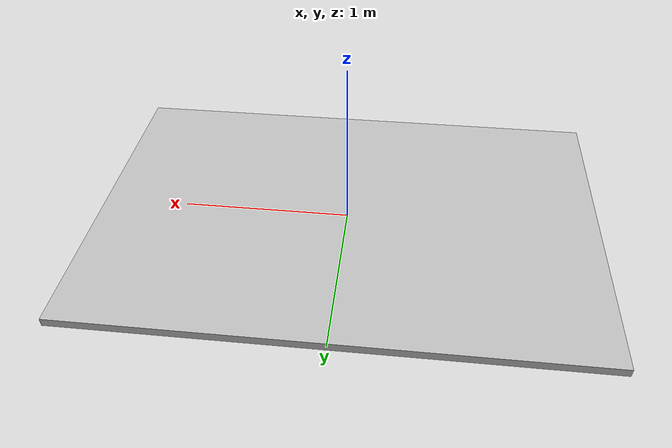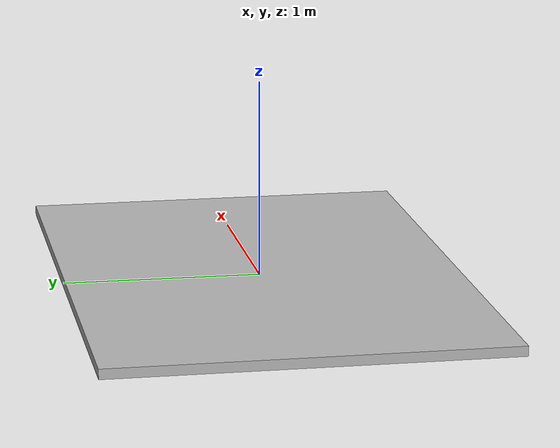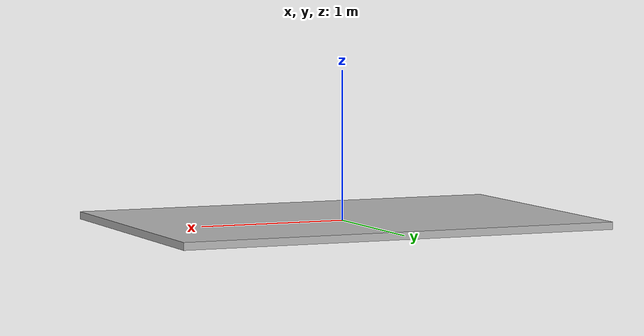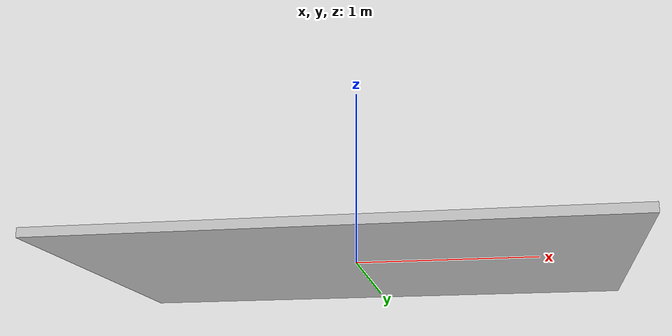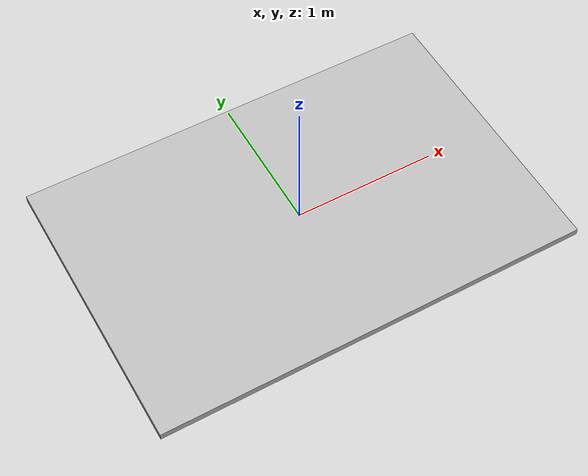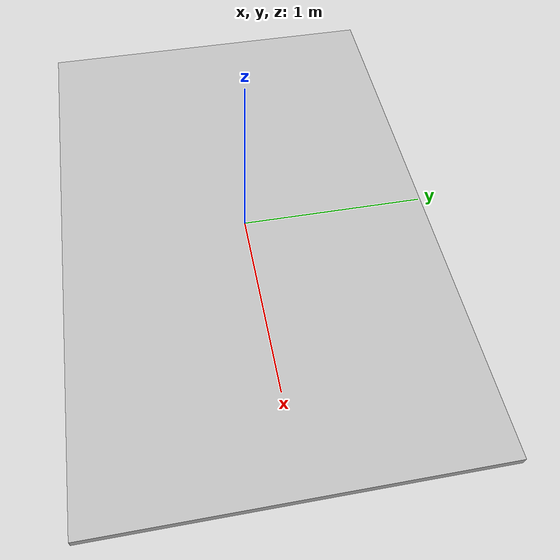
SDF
<?xml version="1.0" ?>
<sdf version="1.4">
  <model name="platform_landing">
    <static>true</static>
    <link name="link">
      <collision name="collision">
        <geometry>
          <box>
            <size>3 2 .05</size>
          </box>
        </geometry>
      </collision>
      <visual name="visual">
        <cast_shadows>false</cast_shadows>
        <geometry>
          <box>
            <size>3 2 .05</size>
          </box>
        </geometry>
        <material>
          <script>
            <uri>model://platform_landing/materials/scripts</uri>
            <uri>model://platform_landing/materials/textures</uri>
            <name>vrc/platform_landing</name>
          </script>
        </material>
      </visual>
    </link>
  </model>
</sdf>
